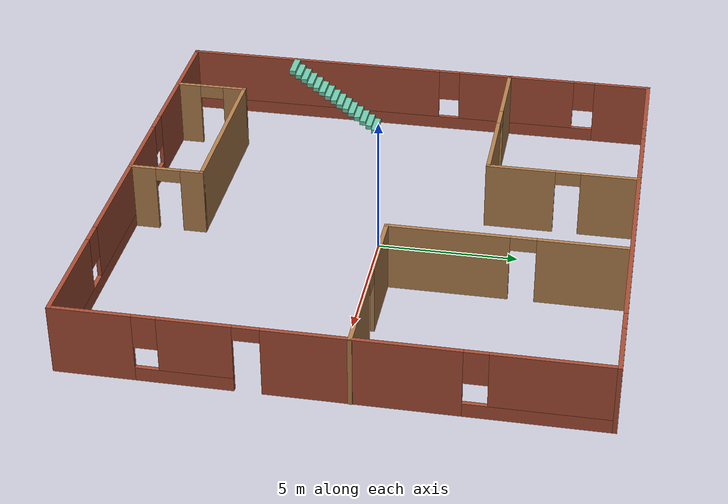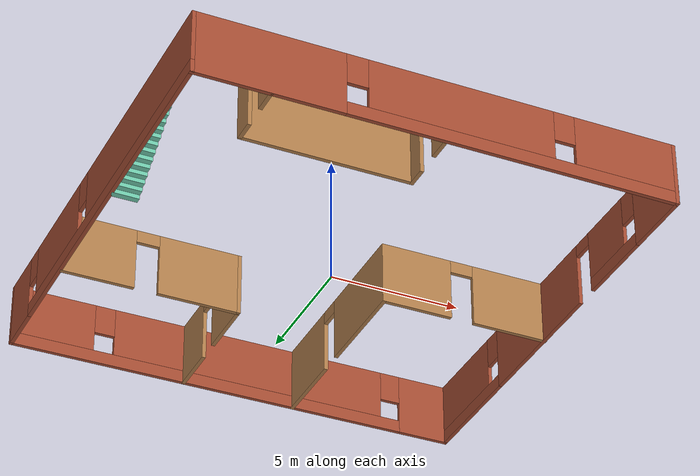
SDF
<?xml version='1.0'?>
<sdf version='1.6'>
  <model name='Building'>
    <pose frame=''>0.010104 0 0 0 -0 0</pose>
    <link name='Stairs_1'>
      <visual name='Stairs_1_Visual_0'>
        <pose frame=''>-8.49445 -1.5935 0.083333 0 -0 0</pose>
        <geometry>
          <box>
            <size>1 0.233333 0.166667</size>
          </box>
        </geometry>
        <material>
          <script>
            <uri>file://media/materials/scripts/gazebo.material</uri>
            <name>Gazebo/Grey</name>
          </script>
          <ambient>0.435294 0.796078 0.67451 1</ambient>
        </material>
        <meta>
          <layer>0</layer>
        </meta>
      </visual>
      <collision name='Stairs_1_Collision_0'>
        <geometry>
          <box>
            <size>1 0.233333 0.166667</size>
          </box>
        </geometry>
        <pose frame=''>-8.49445 -1.5935 0.083333 0 -0 0</pose>
      </collision>
      <visual name='Stairs_1_Visual_1'>
        <pose frame=''>-8.49445 -1.82683 0.25 0 -0 0</pose>
        <geometry>
          <box>
            <size>1 0.233333 0.166667</size>
          </box>
        </geometry>
        <material>
          <script>
            <uri>file://media/materials/scripts/gazebo.material</uri>
            <name>Gazebo/Grey</name>
          </script>
          <ambient>0.435294 0.796078 0.67451 1</ambient>
        </material>
        <meta>
          <layer>0</layer>
        </meta>
      </visual>
      <collision name='Stairs_1_Collision_1'>
        <geometry>
          <box>
            <size>1 0.233333 0.166667</size>
          </box>
        </geometry>
        <pose frame=''>-8.49445 -1.82683 0.25 0 -0 0</pose>
      </collision>
      <visual name='Stairs_1_Visual_2'>
        <pose frame=''>-8.49445 -2.06016 0.416667 0 -0 0</pose>
        <geometry>
          <box>
            <size>1 0.233333 0.166667</size>
          </box>
        </geometry>
        <material>
          <script>
            <uri>file://media/materials/scripts/gazebo.material</uri>
            <name>Gazebo/Grey</name>
          </script>
          <ambient>0.435294 0.796078 0.67451 1</ambient>
        </material>
        <meta>
          <layer>0</layer>
        </meta>
      </visual>
      <collision name='Stairs_1_Collision_2'>
        <geometry>
          <box>
            <size>1 0.233333 0.166667</size>
          </box>
        </geometry>
        <pose frame=''>-8.49445 -2.06016 0.416667 0 -0 0</pose>
      </collision>
      <visual name='Stairs_1_Visual_3'>
        <pose frame=''>-8.49445 -2.2935 0.583333 0 -0 0</pose>
        <geometry>
          <box>
            <size>1 0.233333 0.166667</size>
          </box>
        </geometry>
        <material>
          <script>
            <uri>file://media/materials/scripts/gazebo.material</uri>
            <name>Gazebo/Grey</name>
          </script>
          <ambient>0.435294 0.796078 0.67451 1</ambient>
        </material>
        <meta>
          <layer>0</layer>
        </meta>
      </visual>
      <collision name='Stairs_1_Collision_3'>
        <geometry>
          <box>
            <size>1 0.233333 0.166667</size>
          </box>
        </geometry>
        <pose frame=''>-8.49445 -2.2935 0.583333 0 -0 0</pose>
      </collision>
      <visual name='Stairs_1_Visual_4'>
        <pose frame=''>-8.49445 -2.52683 0.75 0 -0 0</pose>
        <geometry>
          <box>
            <size>1 0.233333 0.166667</size>
          </box>
        </geometry>
        <material>
          <script>
            <uri>file://media/materials/scripts/gazebo.material</uri>
            <name>Gazebo/Grey</name>
          </script>
          <ambient>0.435294 0.796078 0.67451 1</ambient>
        </material>
        <meta>
          <layer>0</layer>
        </meta>
      </visual>
      <collision name='Stairs_1_Collision_4'>
        <geometry>
          <box>
            <size>1 0.233333 0.166667</size>
          </box>
        </geometry>
        <pose frame=''>-8.49445 -2.52683 0.75 0 -0 0</pose>
      </collision>
      <visual name='Stairs_1_Visual_5'>
        <pose frame=''>-8.49445 -2.76016 0.916667 0 -0 0</pose>
        <geometry>
          <box>
            <size>1 0.233333 0.166667</size>
          </box>
        </geometry>
        <material>
          <script>
            <uri>file://media/materials/scripts/gazebo.material</uri>
            <name>Gazebo/Grey</name>
          </script>
          <ambient>0.435294 0.796078 0.67451 1</ambient>
        </material>
        <meta>
          <layer>0</layer>
        </meta>
      </visual>
      <collision name='Stairs_1_Collision_5'>
        <geometry>
          <box>
            <size>1 0.233333 0.166667</size>
          </box>
        </geometry>
        <pose frame=''>-8.49445 -2.76016 0.916667 0 -0 0</pose>
      </collision>
      <visual name='Stairs_1_Visual_6'>
        <pose frame=''>-8.49445 -2.9935 1.08333 0 -0 0</pose>
        <geometry>
          <box>
            <size>1 0.233333 0.166667</size>
          </box>
        </geometry>
        <material>
          <script>
            <uri>file://media/materials/scripts/gazebo.material</uri>
            <name>Gazebo/Grey</name>
          </script>
          <ambient>0.435294 0.796078 0.67451 1</ambient>
        </material>
        <meta>
          <layer>0</layer>
        </meta>
      </visual>
      <collision name='Stairs_1_Collision_6'>
        <geometry>
          <box>
            <size>1 0.233333 0.166667</size>
          </box>
        </geometry>
        <pose frame=''>-8.49445 -2.9935 1.08333 0 -0 0</pose>
      </collision>
      <visual name='Stairs_1_Visual_7'>
        <pose frame=''>-8.49445 -3.22683 1.25 0 -0 0</pose>
        <geometry>
          <box>
            <size>1 0.233333 0.166667</size>
          </box>
        </geometry>
        <material>
          <script>
            <uri>file://media/materials/scripts/gazebo.material</uri>
            <name>Gazebo/Grey</name>
          </script>
          <ambient>0.435294 0.796078 0.67451 1</ambient>
        </material>
        <meta>
          <layer>0</layer>
        </meta>
      </visual>
      <collision name='Stairs_1_Collision_7'>
        <geometry>
          <box>
            <size>1 0.233333 0.166667</size>
          </box>
        </geometry>
        <pose frame=''>-8.49445 -3.22683 1.25 0 -0 0</pose>
      </collision>
      <visual name='Stairs_1_Visual_8'>
        <pose frame=''>-8.49445 -3.46016 1.41667 0 -0 0</pose>
        <geometry>
          <box>
            <size>1 0.233333 0.166667</size>
          </box>
        </geometry>
        <material>
          <script>
            <uri>file://media/materials/scripts/gazebo.material</uri>
            <name>Gazebo/Grey</name>
          </script>
          <ambient>0.435294 0.796078 0.67451 1</ambient>
        </material>
        <meta>
          <layer>0</layer>
        </meta>
      </visual>
      <collision name='Stairs_1_Collision_8'>
        <geometry>
          <box>
            <size>1 0.233333 0.166667</size>
          </box>
        </geometry>
        <pose frame=''>-8.49445 -3.46016 1.41667 0 -0 0</pose>
      </collision>
      <visual name='Stairs_1_Visual_9'>
        <pose frame=''>-8.49445 -3.6935 1.58333 0 -0 0</pose>
        <geometry>
          <box>
            <size>1 0.233333 0.166667</size>
          </box>
        </geometry>
        <material>
          <script>
            <uri>file://media/materials/scripts/gazebo.material</uri>
            <name>Gazebo/Grey</name>
          </script>
          <ambient>0.435294 0.796078 0.67451 1</ambient>
        </material>
        <meta>
          <layer>0</layer>
        </meta>
      </visual>
      <collision name='Stairs_1_Collision_9'>
        <geometry>
          <box>
            <size>1 0.233333 0.166667</size>
          </box>
        </geometry>
        <pose frame=''>-8.49445 -3.6935 1.58333 0 -0 0</pose>
      </collision>
      <visual name='Stairs_1_Visual_10'>
        <pose frame=''>-8.49445 -3.92683 1.75 0 -0 0</pose>
        <geometry>
          <box>
            <size>1 0.233333 0.166667</size>
          </box>
        </geometry>
        <material>
          <script>
            <uri>file://media/materials/scripts/gazebo.material</uri>
            <name>Gazebo/Grey</name>
          </script>
          <ambient>0.435294 0.796078 0.67451 1</ambient>
        </material>
        <meta>
          <layer>0</layer>
        </meta>
      </visual>
      <collision name='Stairs_1_Collision_10'>
        <geometry>
          <box>
            <size>1 0.233333 0.166667</size>
          </box>
        </geometry>
        <pose frame=''>-8.49445 -3.92683 1.75 0 -0 0</pose>
      </collision>
      <visual name='Stairs_1_Visual_11'>
        <pose frame=''>-8.49445 -4.16016 1.91667 0 -0 0</pose>
        <geometry>
          <box>
            <size>1 0.233333 0.166667</size>
          </box>
        </geometry>
        <material>
          <script>
            <uri>file://media/materials/scripts/gazebo.material</uri>
            <name>Gazebo/Grey</name>
          </script>
          <ambient>0.435294 0.796078 0.67451 1</ambient>
        </material>
        <meta>
          <layer>0</layer>
        </meta>
      </visual>
      <collision name='Stairs_1_Collision_11'>
        <geometry>
          <box>
            <size>1 0.233333 0.166667</size>
          </box>
        </geometry>
        <pose frame=''>-8.49445 -4.16016 1.91667 0 -0 0</pose>
      </collision>
      <visual name='Stairs_1_Visual_12'>
        <pose frame=''>-8.49445 -4.3935 2.08333 0 -0 0</pose>
        <geometry>
          <box>
            <size>1 0.233333 0.166667</size>
          </box>
        </geometry>
        <material>
          <script>
            <uri>file://media/materials/scripts/gazebo.material</uri>
            <name>Gazebo/Grey</name>
          </script>
          <ambient>0.435294 0.796078 0.67451 1</ambient>
        </material>
        <meta>
          <layer>0</layer>
        </meta>
      </visual>
      <collision name='Stairs_1_Collision_12'>
        <geometry>
          <box>
            <size>1 0.233333 0.166667</size>
          </box>
        </geometry>
        <pose frame=''>-8.49445 -4.3935 2.08333 0 -0 0</pose>
      </collision>
      <visual name='Stairs_1_Visual_13'>
        <pose frame=''>-8.49445 -4.62683 2.25 0 -0 0</pose>
        <geometry>
          <box>
            <size>1 0.233333 0.166667</size>
          </box>
        </geometry>
        <material>
          <script>
            <uri>file://media/materials/scripts/gazebo.material</uri>
            <name>Gazebo/Grey</name>
          </script>
          <ambient>0.435294 0.796078 0.67451 1</ambient>
        </material>
        <meta>
          <layer>0</layer>
        </meta>
      </visual>
      <collision name='Stairs_1_Collision_13'>
        <geometry>
          <box>
            <size>1 0.233333 0.166667</size>
          </box>
        </geometry>
        <pose frame=''>-8.49445 -4.62683 2.25 0 -0 0</pose>
      </collision>
      <visual name='Stairs_1_Visual_14'>
        <pose frame=''>-8.49445 -4.86016 2.41667 0 -0 0</pose>
        <geometry>
          <box>
            <size>1 0.233333 0.166667</size>
          </box>
        </geometry>
        <material>
          <script>
            <uri>file://media/materials/scripts/gazebo.material</uri>
            <name>Gazebo/Grey</name>
          </script>
          <ambient>0.435294 0.796078 0.67451 1</ambient>
        </material>
        <meta>
          <layer>0</layer>
        </meta>
      </visual>
      <collision name='Stairs_1_Collision_14'>
        <geometry>
          <box>
            <size>1 0.233333 0.166667</size>
          </box>
        </geometry>
        <pose frame=''>-8.49445 -4.86016 2.41667 0 -0 0</pose>
      </collision>
    </link>
    <link name='Wall_21'>
      <pose frame=''>-0.010104 -9 0 0 -0 0</pose>
      <visual name='Wall_21_Visual_0'>
        <pose frame=''>-6.30101 0 1.25 0 -0 0</pose>
        <geometry>
          <box>
            <size>5.54799 0.15 2.5</size>
          </box>
        </geometry>
        <material>
          <script>
            <uri>file://media/materials/scripts/gazebo.material</uri>
            <name>Gazebo/Bricks</name>
          </script>
          <ambient>1 1 1 1</ambient>
        </material>
        <meta>
          <layer>0</layer>
        </meta>
      </visual>
      <collision name='Wall_21_Collision_0'>
        <geometry>
          <box>
            <size>5.54799 0.15 2.5</size>
          </box>
        </geometry>
        <pose frame=''>-6.30101 0 1.25 0 -0 0</pose>
      </collision>
      <visual name='Wall_21_Visual_1'>
        <pose frame=''>2.77399 0 0.25 0 -0 0</pose>
        <geometry>
          <box>
            <size>12.602 0.15 0.5</size>
          </box>
        </geometry>
        <material>
          <script>
            <uri>file://media/materials/scripts/gazebo.material</uri>
            <name>Gazebo/Bricks</name>
          </script>
          <ambient>1 1 1 1</ambient>
        </material>
        <meta>
          <layer>0</layer>
        </meta>
      </visual>
      <collision name='Wall_21_Collision_1'>
        <geometry>
          <box>
            <size>12.602 0.15 0.5</size>
          </box>
        </geometry>
        <pose frame=''>2.77399 0 0.25 0 -0 0</pose>
      </collision>
      <visual name='Wall_21_Visual_2'>
        <pose frame=''>0.768638 0 1.5 0 -0 0</pose>
        <geometry>
          <box>
            <size>6.9913 0.15 2</size>
          </box>
        </geometry>
        <material>
          <script>
            <uri>file://media/materials/scripts/gazebo.material</uri>
            <name>Gazebo/Bricks</name>
          </script>
          <ambient>1 1 1 1</ambient>
        </material>
        <meta>
          <layer>0</layer>
        </meta>
      </visual>
      <collision name='Wall_21_Collision_2'>
        <geometry>
          <box>
            <size>6.9913 0.15 2</size>
          </box>
        </geometry>
        <pose frame=''>0.768638 0 1.5 0 -0 0</pose>
      </collision>
      <visual name='Wall_21_Visual_3'>
        <pose frame=''>7.06965 0 1.5 0 -0 0</pose>
        <geometry>
          <box>
            <size>4.01071 0.15 2</size>
          </box>
        </geometry>
        <material>
          <script>
            <uri>file://media/materials/scripts/gazebo.material</uri>
            <name>Gazebo/Bricks</name>
          </script>
          <ambient>1 1 1 1</ambient>
        </material>
        <meta>
          <layer>0</layer>
        </meta>
      </visual>
      <collision name='Wall_21_Collision_3'>
        <geometry>
          <box>
            <size>4.01071 0.15 2</size>
          </box>
        </geometry>
        <pose frame=''>7.06965 0 1.5 0 -0 0</pose>
      </collision>
      <visual name='Wall_21_Visual_4'>
        <pose frame=''>-3.12701 0 1.9 0 -0 0</pose>
        <geometry>
          <box>
            <size>0.8 0.15 1.2</size>
          </box>
        </geometry>
        <material>
          <script>
            <uri>file://media/materials/scripts/gazebo.material</uri>
            <name>Gazebo/Bricks</name>
          </script>
          <ambient>1 1 1 1</ambient>
        </material>
        <meta>
          <layer>0</layer>
        </meta>
      </visual>
      <collision name='Wall_21_Collision_4'>
        <geometry>
          <box>
            <size>0.8 0.15 1.2</size>
          </box>
        </geometry>
        <pose frame=''>-3.12701 0 1.9 0 -0 0</pose>
      </collision>
      <visual name='Wall_21_Visual_5'>
        <pose frame=''>4.66429 0 1.9 0 -0 0</pose>
        <geometry>
          <box>
            <size>0.8 0.15 1.2</size>
          </box>
        </geometry>
        <material>
          <script>
            <uri>file://media/materials/scripts/gazebo.material</uri>
            <name>Gazebo/Bricks</name>
          </script>
          <ambient>1 1 1 1</ambient>
        </material>
        <meta>
          <layer>0</layer>
        </meta>
      </visual>
      <collision name='Wall_21_Collision_5'>
        <geometry>
          <box>
            <size>0.8 0.15 1.2</size>
          </box>
        </geometry>
        <pose frame=''>4.66429 0 1.9 0 -0 0</pose>
      </collision>
    </link>
    <link name='Wall_22'>
      <pose frame=''>8.9899 0 0 0 -0 1.5708</pose>
      <visual name='Wall_22_Visual_0'>
        <pose frame=''>-7.68285 0 1.25 0 -0 0</pose>
        <geometry>
          <box>
            <size>2.78431 0.15 2.5</size>
          </box>
        </geometry>
        <material>
          <script>
            <uri>file://media/materials/scripts/gazebo.material</uri>
            <name>Gazebo/Bricks</name>
          </script>
          <ambient>1 1 1 1</ambient>
        </material>
        <meta>
          <layer>0</layer>
        </meta>
      </visual>
      <collision name='Wall_22_Collision_0'>
        <geometry>
          <box>
            <size>2.78431 0.15 2.5</size>
          </box>
        </geometry>
        <pose frame=''>-7.68285 0 1.25 0 -0 0</pose>
      </collision>
      <visual name='Wall_22_Visual_1'>
        <pose frame=''>1.04445 0 1.25 0 -0 0</pose>
        <geometry>
          <box>
            <size>6.38478 0.15 2.5</size>
          </box>
        </geometry>
        <material>
          <script>
            <uri>file://media/materials/scripts/gazebo.material</uri>
            <name>Gazebo/Bricks</name>
          </script>
          <ambient>1 1 1 1</ambient>
        </material>
        <meta>
          <layer>0</layer>
        </meta>
      </visual>
      <collision name='Wall_22_Collision_1'>
        <geometry>
          <box>
            <size>6.38478 0.15 2.5</size>
          </box>
        </geometry>
        <pose frame=''>1.04445 0 1.25 0 -0 0</pose>
      </collision>
      <visual name='Wall_22_Visual_2'>
        <pose frame=''>-4.66932 0 0.25 0 -0 0</pose>
        <geometry>
          <box>
            <size>3.24275 0.15 0.5</size>
          </box>
        </geometry>
        <material>
          <script>
            <uri>file://media/materials/scripts/gazebo.material</uri>
            <name>Gazebo/Bricks</name>
          </script>
          <ambient>1 1 1 1</ambient>
        </material>
        <meta>
          <layer>0</layer>
        </meta>
      </visual>
      <collision name='Wall_22_Collision_2'>
        <geometry>
          <box>
            <size>3.24275 0.15 0.5</size>
          </box>
        </geometry>
        <pose frame=''>-4.66932 0 0.25 0 -0 0</pose>
      </collision>
      <visual name='Wall_22_Visual_3'>
        <pose frame=''>6.65592 0 0.25 0 -0 0</pose>
        <geometry>
          <box>
            <size>4.83816 0.15 0.5</size>
          </box>
        </geometry>
        <material>
          <script>
            <uri>file://media/materials/scripts/gazebo.material</uri>
            <name>Gazebo/Bricks</name>
          </script>
          <ambient>1 1 1 1</ambient>
        </material>
        <meta>
          <layer>0</layer>
        </meta>
      </visual>
      <collision name='Wall_22_Collision_3'>
        <geometry>
          <box>
            <size>4.83816 0.15 0.5</size>
          </box>
        </geometry>
        <pose frame=''>6.65592 0 0.25 0 -0 0</pose>
      </collision>
      <visual name='Wall_22_Visual_4'>
        <pose frame=''>-4.26931 0 1.5 0 -0 0</pose>
        <geometry>
          <box>
            <size>2.44275 0.15 2</size>
          </box>
        </geometry>
        <material>
          <script>
            <uri>file://media/materials/scripts/gazebo.material</uri>
            <name>Gazebo/Bricks</name>
          </script>
          <ambient>1 1 1 1</ambient>
        </material>
        <meta>
          <layer>0</layer>
        </meta>
      </visual>
      <collision name='Wall_22_Collision_4'>
        <geometry>
          <box>
            <size>2.44275 0.15 2</size>
          </box>
        </geometry>
        <pose frame=''>-4.26931 0 1.5 0 -0 0</pose>
      </collision>
      <visual name='Wall_22_Visual_5'>
        <pose frame=''>-4.26931 0 1.5 0 -0 0</pose>
        <geometry>
          <box>
            <size>2.44275 0.15 2</size>
          </box>
        </geometry>
        <material>
          <script>
            <uri>file://media/materials/scripts/gazebo.material</uri>
            <name>Gazebo/Bricks</name>
          </script>
          <ambient>1 1 1 1</ambient>
        </material>
        <meta>
          <layer>0</layer>
        </meta>
      </visual>
      <collision name='Wall_22_Collision_5'>
        <geometry>
          <box>
            <size>2.44275 0.15 2</size>
          </box>
        </geometry>
        <pose frame=''>-4.26931 0 1.5 0 -0 0</pose>
      </collision>
      <visual name='Wall_22_Visual_6'>
        <pose frame=''>7.05592 0 1.5 0 -0 0</pose>
        <geometry>
          <box>
            <size>4.03816 0.15 2</size>
          </box>
        </geometry>
        <material>
          <script>
            <uri>file://media/materials/scripts/gazebo.material</uri>
            <name>Gazebo/Bricks</name>
          </script>
          <ambient>1 1 1 1</ambient>
        </material>
        <meta>
          <layer>0</layer>
        </meta>
      </visual>
      <collision name='Wall_22_Collision_6'>
        <geometry>
          <box>
            <size>4.03816 0.15 2</size>
          </box>
        </geometry>
        <pose frame=''>7.05592 0 1.5 0 -0 0</pose>
      </collision>
      <visual name='Wall_22_Visual_7'>
        <pose frame=''>-5.89069 0 1.9 0 -0 0</pose>
        <geometry>
          <box>
            <size>0.8 0.15 1.2</size>
          </box>
        </geometry>
        <material>
          <script>
            <uri>file://media/materials/scripts/gazebo.material</uri>
            <name>Gazebo/Bricks</name>
          </script>
          <ambient>1 1 1 1</ambient>
        </material>
        <meta>
          <layer>0</layer>
        </meta>
      </visual>
      <collision name='Wall_22_Collision_7'>
        <geometry>
          <box>
            <size>0.8 0.15 1.2</size>
          </box>
        </geometry>
        <pose frame=''>-5.89069 0 1.9 0 -0 0</pose>
      </collision>
      <visual name='Wall_22_Visual_8'>
        <pose frame=''>4.63684 0 1.9 0 -0 0</pose>
        <geometry>
          <box>
            <size>0.8 0.15 1.2</size>
          </box>
        </geometry>
        <material>
          <script>
            <uri>file://media/materials/scripts/gazebo.material</uri>
            <name>Gazebo/Bricks</name>
          </script>
          <ambient>1 1 1 1</ambient>
        </material>
        <meta>
          <layer>0</layer>
        </meta>
      </visual>
      <collision name='Wall_22_Collision_8'>
        <geometry>
          <box>
            <size>0.8 0.15 1.2</size>
          </box>
        </geometry>
        <pose frame=''>4.63684 0 1.9 0 -0 0</pose>
      </collision>
      <visual name='Wall_22_Visual_9'>
        <pose frame=''>-2.59794 0 2.25 0 -0 0</pose>
        <geometry>
          <box>
            <size>0.9 0.15 0.5</size>
          </box>
        </geometry>
        <material>
          <script>
            <uri>file://media/materials/scripts/gazebo.material</uri>
            <name>Gazebo/Bricks</name>
          </script>
          <ambient>1 1 1 1</ambient>
        </material>
        <meta>
          <layer>0</layer>
        </meta>
      </visual>
      <collision name='Wall_22_Collision_9'>
        <geometry>
          <box>
            <size>0.9 0.15 0.5</size>
          </box>
        </geometry>
        <pose frame=''>-2.59794 0 2.25 0 -0 0</pose>
      </collision>
      <visual name='Wall_22_Visual_10'>
        <pose frame=''>-2.59794 0 2.25 0 -0 0</pose>
        <geometry>
          <box>
            <size>0.9 0.15 0.5</size>
          </box>
        </geometry>
        <material>
          <script>
            <uri>file://media/materials/scripts/gazebo.material</uri>
            <name>Gazebo/Bricks</name>
          </script>
          <ambient>1 1 1 1</ambient>
        </material>
        <meta>
          <layer>0</layer>
        </meta>
      </visual>
      <collision name='Wall_22_Collision_10'>
        <geometry>
          <box>
            <size>0.9 0.15 0.5</size>
          </box>
        </geometry>
        <pose frame=''>-2.59794 0 2.25 0 -0 0</pose>
      </collision>
    </link>
    <link name='Wall_23'>
      <pose frame=''>-0.010104 9 0 0 -0 3.14159</pose>
      <visual name='Wall_23_Visual_0'>
        <pose frame=''>-8.02037 0 1.25 0 -0 0</pose>
        <geometry>
          <box>
            <size>2.10926 0.15 2.5</size>
          </box>
        </geometry>
        <material>
          <script>
            <uri>file://media/materials/scripts/gazebo.material</uri>
            <name>Gazebo/Bricks</name>
          </script>
          <ambient>1 1 1 1</ambient>
        </material>
        <meta>
          <layer>0</layer>
        </meta>
      </visual>
      <collision name='Wall_23_Collision_0'>
        <geometry>
          <box>
            <size>2.10926 0.15 2.5</size>
          </box>
        </geometry>
        <pose frame=''>-8.02037 0 1.25 0 -0 0</pose>
      </collision>
      <visual name='Wall_23_Visual_1'>
        <pose frame=''>1.05463 0 0.25 0 -0 0</pose>
        <geometry>
          <box>
            <size>16.0407 0.15 0.5</size>
          </box>
        </geometry>
        <material>
          <script>
            <uri>file://media/materials/scripts/gazebo.material</uri>
            <name>Gazebo/Bricks</name>
          </script>
          <ambient>1 1 1 1</ambient>
        </material>
        <meta>
          <layer>0</layer>
        </meta>
      </visual>
      <collision name='Wall_23_Collision_1'>
        <geometry>
          <box>
            <size>16.0407 0.15 0.5</size>
          </box>
        </geometry>
        <pose frame=''>1.05463 0 0.25 0 -0 0</pose>
      </collision>
      <visual name='Wall_23_Visual_2'>
        <pose frame=''>-0.583131 0 1.5 0 -0 0</pose>
        <geometry>
          <box>
            <size>11.1652 0.15 2</size>
          </box>
        </geometry>
        <material>
          <script>
            <uri>file://media/materials/scripts/gazebo.material</uri>
            <name>Gazebo/Bricks</name>
          </script>
          <ambient>1 1 1 1</ambient>
        </material>
        <meta>
          <layer>0</layer>
        </meta>
      </visual>
      <collision name='Wall_23_Collision_2'>
        <geometry>
          <box>
            <size>11.1652 0.15 2</size>
          </box>
        </geometry>
        <pose frame=''>-0.583131 0 1.5 0 -0 0</pose>
      </collision>
      <visual name='Wall_23_Visual_3'>
        <pose frame=''>7.43724 0 1.5 0 -0 0</pose>
        <geometry>
          <box>
            <size>3.27552 0.15 2</size>
          </box>
        </geometry>
        <material>
          <script>
            <uri>file://media/materials/scripts/gazebo.material</uri>
            <name>Gazebo/Bricks</name>
          </script>
          <ambient>1 1 1 1</ambient>
        </material>
        <meta>
          <layer>0</layer>
        </meta>
      </visual>
      <collision name='Wall_23_Collision_3'>
        <geometry>
          <box>
            <size>3.27552 0.15 2</size>
          </box>
        </geometry>
        <pose frame=''>7.43724 0 1.5 0 -0 0</pose>
      </collision>
      <visual name='Wall_23_Visual_4'>
        <pose frame=''>-6.56574 0 1.9 0 -0 0</pose>
        <geometry>
          <box>
            <size>0.8 0.15 1.2</size>
          </box>
        </geometry>
        <material>
          <script>
            <uri>file://media/materials/scripts/gazebo.material</uri>
            <name>Gazebo/Bricks</name>
          </script>
          <ambient>1 1 1 1</ambient>
        </material>
        <meta>
          <layer>0</layer>
        </meta>
      </visual>
      <collision name='Wall_23_Collision_4'>
        <geometry>
          <box>
            <size>0.8 0.15 1.2</size>
          </box>
        </geometry>
        <pose frame=''>-6.56574 0 1.9 0 -0 0</pose>
      </collision>
      <visual name='Wall_23_Visual_5'>
        <pose frame=''>5.39948 0 1.9 0 -0 0</pose>
        <geometry>
          <box>
            <size>0.8 0.15 1.2</size>
          </box>
        </geometry>
        <material>
          <script>
            <uri>file://media/materials/scripts/gazebo.material</uri>
            <name>Gazebo/Bricks</name>
          </script>
          <ambient>1 1 1 1</ambient>
        </material>
        <meta>
          <layer>0</layer>
        </meta>
      </visual>
      <collision name='Wall_23_Collision_5'>
        <geometry>
          <box>
            <size>0.8 0.15 1.2</size>
          </box>
        </geometry>
        <pose frame=''>5.39948 0 1.9 0 -0 0</pose>
      </collision>
    </link>
    <link name='Wall_24'>
      <pose frame=''>-9.0101 0 0 0 0 -1.5708</pose>
      <visual name='Wall_24_Visual_0'>
        <pose frame=''>-8.00665 0 1.25 0 -0 0</pose>
        <geometry>
          <box>
            <size>2.13671 0.15 2.5</size>
          </box>
        </geometry>
        <material>
          <script>
            <uri>file://media/materials/scripts/gazebo.material</uri>
            <name>Gazebo/Bricks</name>
          </script>
          <ambient>1 1 1 1</ambient>
        </material>
        <meta>
          <layer>0</layer>
        </meta>
      </visual>
      <collision name='Wall_24_Collision_0'>
        <geometry>
          <box>
            <size>2.13671 0.15 2.5</size>
          </box>
        </geometry>
        <pose frame=''>-8.00665 0 1.25 0 -0 0</pose>
      </collision>
      <visual name='Wall_24_Visual_1'>
        <pose frame=''>1.06835 0 0.25 0 -0 0</pose>
        <geometry>
          <box>
            <size>16.0133 0.15 0.5</size>
          </box>
        </geometry>
        <material>
          <script>
            <uri>file://media/materials/scripts/gazebo.material</uri>
            <name>Gazebo/Bricks</name>
          </script>
          <ambient>1 1 1 1</ambient>
        </material>
        <meta>
          <layer>0</layer>
        </meta>
      </visual>
      <collision name='Wall_24_Collision_1'>
        <geometry>
          <box>
            <size>16.0133 0.15 0.5</size>
          </box>
        </geometry>
        <pose frame=''>1.06835 0 0.25 0 -0 0</pose>
      </collision>
      <visual name='Wall_24_Visual_2'>
        <pose frame=''>-3.89481 0 1.5 0 -0 0</pose>
        <geometry>
          <box>
            <size>4.48696 0.15 2</size>
          </box>
        </geometry>
        <material>
          <script>
            <uri>file://media/materials/scripts/gazebo.material</uri>
            <name>Gazebo/Bricks</name>
          </script>
          <ambient>1 1 1 1</ambient>
        </material>
        <meta>
          <layer>0</layer>
        </meta>
      </visual>
      <collision name='Wall_24_Collision_2'>
        <geometry>
          <box>
            <size>4.48696 0.15 2</size>
          </box>
        </geometry>
        <pose frame=''>-3.89481 0 1.5 0 -0 0</pose>
      </collision>
      <visual name='Wall_24_Visual_3'>
        <pose frame=''>4.11183 0 1.5 0 -0 0</pose>
        <geometry>
          <box>
            <size>9.92634 0.15 2</size>
          </box>
        </geometry>
        <material>
          <script>
            <uri>file://media/materials/scripts/gazebo.material</uri>
            <name>Gazebo/Bricks</name>
          </script>
          <ambient>1 1 1 1</ambient>
        </material>
        <meta>
          <layer>0</layer>
        </meta>
      </visual>
      <collision name='Wall_24_Collision_3'>
        <geometry>
          <box>
            <size>9.92634 0.15 2</size>
          </box>
        </geometry>
        <pose frame=''>4.11183 0 1.5 0 -0 0</pose>
      </collision>
      <visual name='Wall_24_Visual_4'>
        <pose frame=''>-6.53829 0 1.9 0 -0 0</pose>
        <geometry>
          <box>
            <size>0.8 0.15 1.2</size>
          </box>
        </geometry>
        <material>
          <script>
            <uri>file://media/materials/scripts/gazebo.material</uri>
            <name>Gazebo/Bricks</name>
          </script>
          <ambient>1 1 1 1</ambient>
        </material>
        <meta>
          <layer>0</layer>
        </meta>
      </visual>
      <collision name='Wall_24_Collision_4'>
        <geometry>
          <box>
            <size>0.8 0.15 1.2</size>
          </box>
        </geometry>
        <pose frame=''>-6.53829 0 1.9 0 -0 0</pose>
      </collision>
      <visual name='Wall_24_Visual_5'>
        <pose frame=''>-1.25134 0 1.9 0 -0 0</pose>
        <geometry>
          <box>
            <size>0.8 0.15 1.2</size>
          </box>
        </geometry>
        <material>
          <script>
            <uri>file://media/materials/scripts/gazebo.material</uri>
            <name>Gazebo/Bricks</name>
          </script>
          <ambient>1 1 1 1</ambient>
        </material>
        <meta>
          <layer>0</layer>
        </meta>
      </visual>
      <collision name='Wall_24_Collision_5'>
        <geometry>
          <box>
            <size>0.8 0.15 1.2</size>
          </box>
        </geometry>
        <pose frame=''>-1.25134 0 1.9 0 -0 0</pose>
      </collision>
    </link>
    <link name='Wall_26'>
      <pose frame=''>5.7101 0.706027 0 0 0 -3.14158</pose>
      <visual name='Wall_26_Visual_0'>
        <pose frame=''>-1.84831 0 1.25 0 -0 0</pose>
        <geometry>
          <box>
            <size>3.05338 0.15 2.5</size>
          </box>
        </geometry>
        <material>
          <script>
            <uri>file://media/materials/scripts/gazebo.material</uri>
            <name>Gazebo/Wood</name>
          </script>
          <ambient>1 1 1 1</ambient>
        </material>
        <meta>
          <layer>0</layer>
        </meta>
      </visual>
      <collision name='Wall_26_Collision_0'>
        <geometry>
          <box>
            <size>3.05338 0.15 2.5</size>
          </box>
        </geometry>
        <pose frame=''>-1.84831 0 1.25 0 -0 0</pose>
      </collision>
      <visual name='Wall_26_Visual_1'>
        <pose frame=''>1.97669 0 1.25 0 -0 0</pose>
        <geometry>
          <box>
            <size>2.79662 0.15 2.5</size>
          </box>
        </geometry>
        <material>
          <script>
            <uri>file://media/materials/scripts/gazebo.material</uri>
            <name>Gazebo/Wood</name>
          </script>
          <ambient>1 1 1 1</ambient>
        </material>
        <meta>
          <layer>0</layer>
        </meta>
      </visual>
      <collision name='Wall_26_Collision_1'>
        <geometry>
          <box>
            <size>2.79662 0.15 2.5</size>
          </box>
        </geometry>
        <pose frame=''>1.97669 0 1.25 0 -0 0</pose>
      </collision>
      <visual name='Wall_26_Visual_2'>
        <pose frame=''>0.128381 0 2.25 0 -0 0</pose>
        <geometry>
          <box>
            <size>0.9 0.15 0.5</size>
          </box>
        </geometry>
        <material>
          <script>
            <uri>file://media/materials/scripts/gazebo.material</uri>
            <name>Gazebo/Wood</name>
          </script>
          <ambient>1 1 1 1</ambient>
        </material>
        <meta>
          <layer>0</layer>
        </meta>
      </visual>
      <collision name='Wall_26_Collision_2'>
        <geometry>
          <box>
            <size>0.9 0.15 0.5</size>
          </box>
        </geometry>
        <pose frame=''>0.128381 0 2.25 0 -0 0</pose>
      </collision>
    </link>
    <link name='Wall_27'>
      <pose frame=''>2.4099 4.853 0 0 -0 1.5708</pose>
      <visual name='Wall_27_Visual_0'>
        <pose frame=''>-2.07306 0 1.25 0 -0 0</pose>
        <geometry>
          <box>
            <size>4.29787 0.15 2.5</size>
          </box>
        </geometry>
        <material>
          <script>
            <uri>file://media/materials/scripts/gazebo.material</uri>
            <name>Gazebo/Wood</name>
          </script>
          <ambient>1 1 1 1</ambient>
        </material>
        <meta>
          <layer>0</layer>
        </meta>
      </visual>
      <collision name='Wall_27_Collision_0'>
        <geometry>
          <box>
            <size>4.29787 0.15 2.5</size>
          </box>
        </geometry>
        <pose frame=''>-2.07306 0 1.25 0 -0 0</pose>
      </collision>
      <visual name='Wall_27_Visual_1'>
        <pose frame=''>2.59894 0 1.25 0 -0 0</pose>
        <geometry>
          <box>
            <size>3.24613 0.15 2.5</size>
          </box>
        </geometry>
        <material>
          <script>
            <uri>file://media/materials/scripts/gazebo.material</uri>
            <name>Gazebo/Wood</name>
          </script>
          <ambient>1 1 1 1</ambient>
        </material>
        <meta>
          <layer>0</layer>
        </meta>
      </visual>
      <collision name='Wall_27_Collision_1'>
        <geometry>
          <box>
            <size>3.24613 0.15 2.5</size>
          </box>
        </geometry>
        <pose frame=''>2.59894 0 1.25 0 -0 0</pose>
      </collision>
      <visual name='Wall_27_Visual_2'>
        <pose frame=''>0.525873 0 2.25 0 -0 0</pose>
        <geometry>
          <box>
            <size>0.9 0.15 0.5</size>
          </box>
        </geometry>
        <material>
          <script>
            <uri>file://media/materials/scripts/gazebo.material</uri>
            <name>Gazebo/Wood</name>
          </script>
          <ambient>1 1 1 1</ambient>
        </material>
        <meta>
          <layer>0</layer>
        </meta>
      </visual>
      <collision name='Wall_27_Collision_2'>
        <geometry>
          <box>
            <size>0.9 0.15 0.5</size>
          </box>
        </geometry>
        <pose frame=''>0.525873 0 2.25 0 -0 0</pose>
      </collision>
    </link>
    <link name='Wall_30'>
      <pose frame=''>-5.54264 3.62213 0 0 -0 0</pose>
      <visual name='Wall_30_Visual_0'>
        <pose frame=''>-2.07079 0 1.25 0 -0 0</pose>
        <geometry>
          <box>
            <size>2.85842 0.15 2.5</size>
          </box>
        </geometry>
        <material>
          <script>
            <uri>file://media/materials/scripts/gazebo.material</uri>
            <name>Gazebo/Wood</name>
          </script>
          <ambient>1 1 1 1</ambient>
        </material>
        <meta>
          <layer>0</layer>
        </meta>
      </visual>
      <collision name='Wall_30_Collision_0'>
        <geometry>
          <box>
            <size>2.85842 0.15 2.5</size>
          </box>
        </geometry>
        <pose frame=''>-2.07079 0 1.25 0 -0 0</pose>
      </collision>
      <visual name='Wall_30_Visual_1'>
        <pose frame=''>1.87921 0 1.25 0 -0 0</pose>
        <geometry>
          <box>
            <size>3.24158 0.15 2.5</size>
          </box>
        </geometry>
        <material>
          <script>
            <uri>file://media/materials/scripts/gazebo.material</uri>
            <name>Gazebo/Wood</name>
          </script>
          <ambient>1 1 1 1</ambient>
        </material>
        <meta>
          <layer>0</layer>
        </meta>
      </visual>
      <collision name='Wall_30_Collision_1'>
        <geometry>
          <box>
            <size>3.24158 0.15 2.5</size>
          </box>
        </geometry>
        <pose frame=''>1.87921 0 1.25 0 -0 0</pose>
      </collision>
      <visual name='Wall_30_Visual_2'>
        <pose frame=''>-0.19158 0 2.25 0 -0 0</pose>
        <geometry>
          <box>
            <size>0.9 0.15 0.5</size>
          </box>
        </geometry>
        <material>
          <script>
            <uri>file://media/materials/scripts/gazebo.material</uri>
            <name>Gazebo/Wood</name>
          </script>
          <ambient>1 1 1 1</ambient>
        </material>
        <meta>
          <layer>0</layer>
        </meta>
      </visual>
      <collision name='Wall_30_Collision_2'>
        <geometry>
          <box>
            <size>0.9 0.15 0.5</size>
          </box>
        </geometry>
        <pose frame=''>-0.19158 0 2.25 0 -0 0</pose>
      </collision>
    </link>
    <link name='Wall_31'>
      <pose frame=''>-2.11764 6.29713 0 0 -0 1.5708</pose>
      <visual name='Wall_31_Visual_0'>
        <pose frame=''>-1.50261 0 1.25 0 -0 0</pose>
        <geometry>
          <box>
            <size>2.49478 0.15 2.5</size>
          </box>
        </geometry>
        <material>
          <script>
            <uri>file://media/materials/scripts/gazebo.material</uri>
            <name>Gazebo/Wood</name>
          </script>
          <ambient>1 1 1 1</ambient>
        </material>
        <meta>
          <layer>0</layer>
        </meta>
      </visual>
      <collision name='Wall_31_Collision_0'>
        <geometry>
          <box>
            <size>2.49478 0.15 2.5</size>
          </box>
        </geometry>
        <pose frame=''>-1.50261 0 1.25 0 -0 0</pose>
      </collision>
      <visual name='Wall_31_Visual_1'>
        <pose frame=''>1.69739 0 1.25 0 -0 0</pose>
        <geometry>
          <box>
            <size>2.10522 0.15 2.5</size>
          </box>
        </geometry>
        <material>
          <script>
            <uri>file://media/materials/scripts/gazebo.material</uri>
            <name>Gazebo/Wood</name>
          </script>
          <ambient>1 1 1 1</ambient>
        </material>
        <meta>
          <layer>0</layer>
        </meta>
      </visual>
      <collision name='Wall_31_Collision_1'>
        <geometry>
          <box>
            <size>2.10522 0.15 2.5</size>
          </box>
        </geometry>
        <pose frame=''>1.69739 0 1.25 0 -0 0</pose>
      </collision>
      <visual name='Wall_31_Visual_2'>
        <pose frame=''>0.194784 0 2.25 0 -0 0</pose>
        <geometry>
          <box>
            <size>0.9 0.15 0.5</size>
          </box>
        </geometry>
        <material>
          <script>
            <uri>file://media/materials/scripts/gazebo.material</uri>
            <name>Gazebo/Wood</name>
          </script>
          <ambient>1 1 1 1</ambient>
        </material>
        <meta>
          <layer>0</layer>
        </meta>
      </visual>
      <collision name='Wall_31_Collision_2'>
        <geometry>
          <box>
            <size>0.9 0.15 0.5</size>
          </box>
        </geometry>
        <pose frame=''>0.194784 0 2.25 0 -0 0</pose>
      </collision>
    </link>
    <link name='Wall_33'>
      <pose frame=''>-6.22199 -7.67755 0 0 -0 1.5708</pose>
      <visual name='Wall_33_Visual_0'>
        <pose frame=''>-0.900228 0 1.25 0 -0 0</pose>
        <geometry>
          <box>
            <size>0.949543 0.15 2.5</size>
          </box>
        </geometry>
        <material>
          <script>
            <uri>file://media/materials/scripts/gazebo.material</uri>
            <name>Gazebo/Wood</name>
          </script>
          <ambient>1 1 1 1</ambient>
        </material>
        <meta>
          <layer>0</layer>
        </meta>
      </visual>
      <collision name='Wall_33_Collision_0'>
        <geometry>
          <box>
            <size>0.949543 0.15 2.5</size>
          </box>
        </geometry>
        <pose frame=''>-0.900228 0 1.25 0 -0 0</pose>
      </collision>
      <visual name='Wall_33_Visual_1'>
        <pose frame=''>0.924772 0 1.25 0 -0 0</pose>
        <geometry>
          <box>
            <size>0.900457 0.15 2.5</size>
          </box>
        </geometry>
        <material>
          <script>
            <uri>file://media/materials/scripts/gazebo.material</uri>
            <name>Gazebo/Wood</name>
          </script>
          <ambient>1 1 1 1</ambient>
        </material>
        <meta>
          <layer>0</layer>
        </meta>
      </visual>
      <collision name='Wall_33_Collision_1'>
        <geometry>
          <box>
            <size>0.900457 0.15 2.5</size>
          </box>
        </geometry>
        <pose frame=''>0.924772 0 1.25 0 -0 0</pose>
      </collision>
      <visual name='Wall_33_Visual_2'>
        <pose frame=''>0.024543 0 2.25 0 -0 0</pose>
        <geometry>
          <box>
            <size>0.9 0.15 0.5</size>
          </box>
        </geometry>
        <material>
          <script>
            <uri>file://media/materials/scripts/gazebo.material</uri>
            <name>Gazebo/Wood</name>
          </script>
          <ambient>1 1 1 1</ambient>
        </material>
        <meta>
          <layer>0</layer>
        </meta>
      </visual>
      <collision name='Wall_33_Collision_2'>
        <geometry>
          <box>
            <size>0.9 0.15 0.5</size>
          </box>
        </geometry>
        <pose frame=''>0.024543 0 2.25 0 -0 0</pose>
      </collision>
    </link>
    <link name='Wall_34'>
      <collision name='Wall_34_Collision'>
        <geometry>
          <box>
            <size>6.5 0.15 2.5</size>
          </box>
        </geometry>
        <pose frame=''>0 0 1.25 0 -0 0</pose>
      </collision>
      <visual name='Wall_34_Visual'>
        <pose frame=''>0 0 1.25 0 -0 0</pose>
        <geometry>
          <box>
            <size>6.5 0.15 2.5</size>
          </box>
        </geometry>
        <material>
          <script>
            <uri>file://media/materials/scripts/gazebo.material</uri>
            <name>Gazebo/Wood</name>
          </script>
          <ambient>1 1 1 1</ambient>
        </material>
        <meta>
          <layer>0</layer>
        </meta>
      </visual>
      <pose frame=''>-3.04699 -6.37755 0 0 -0 0</pose>
    </link>
    <link name='Wall_35'>
      <pose frame=''>0.128012 -7.67755 0 0 0 -1.5708</pose>
      <visual name='Wall_35_Visual_0'>
        <pose frame=''>-0.94796 0 1.25 0 -0 0</pose>
        <geometry>
          <box>
            <size>0.85408 0.15 2.5</size>
          </box>
        </geometry>
        <material>
          <script>
            <uri>file://media/materials/scripts/gazebo.material</uri>
            <name>Gazebo/Wood</name>
          </script>
          <ambient>1 1 1 1</ambient>
        </material>
        <meta>
          <layer>0</layer>
        </meta>
      </visual>
      <collision name='Wall_35_Collision_0'>
        <geometry>
          <box>
            <size>0.85408 0.15 2.5</size>
          </box>
        </geometry>
        <pose frame=''>-0.94796 0 1.25 0 -0 0</pose>
      </collision>
      <visual name='Wall_35_Visual_1'>
        <pose frame=''>0.87704 0 1.25 0 -0 0</pose>
        <geometry>
          <box>
            <size>0.99592 0.15 2.5</size>
          </box>
        </geometry>
        <material>
          <script>
            <uri>file://media/materials/scripts/gazebo.material</uri>
            <name>Gazebo/Wood</name>
          </script>
          <ambient>1 1 1 1</ambient>
        </material>
        <meta>
          <layer>0</layer>
        </meta>
      </visual>
      <collision name='Wall_35_Collision_1'>
        <geometry>
          <box>
            <size>0.99592 0.15 2.5</size>
          </box>
        </geometry>
        <pose frame=''>0.87704 0 1.25 0 -0 0</pose>
      </collision>
      <visual name='Wall_35_Visual_2'>
        <pose frame=''>-0.07092 0 2.25 0 -0 0</pose>
        <geometry>
          <box>
            <size>0.9 0.15 0.5</size>
          </box>
        </geometry>
        <material>
          <script>
            <uri>file://media/materials/scripts/gazebo.material</uri>
            <name>Gazebo/Wood</name>
          </script>
          <ambient>1 1 1 1</ambient>
        </material>
        <meta>
          <layer>0</layer>
        </meta>
      </visual>
      <collision name='Wall_35_Collision_2'>
        <geometry>
          <box>
            <size>0.9 0.15 0.5</size>
          </box>
        </geometry>
        <pose frame=''>-0.07092 0 2.25 0 -0 0</pose>
      </collision>
    </link>
    <static>1</static>
  </model>
</sdf>
